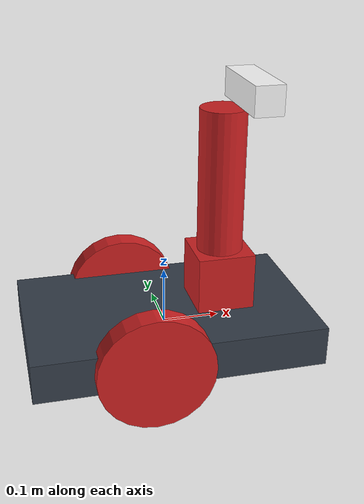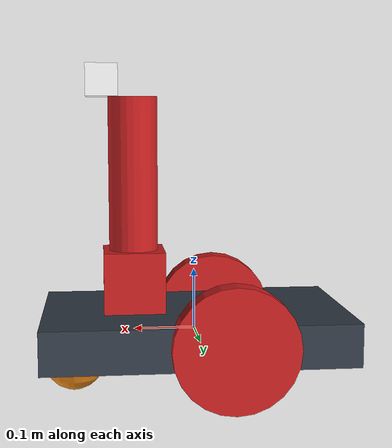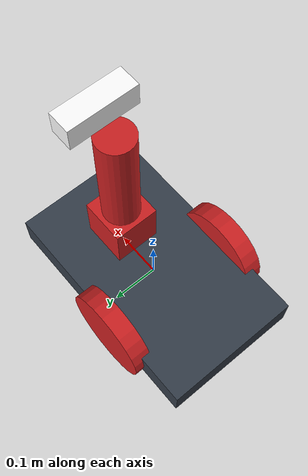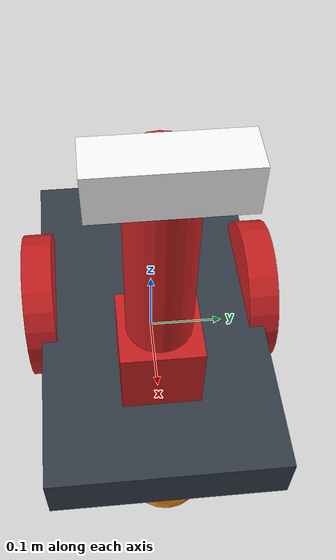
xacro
<?xml version="1.0"?>
<robot xmlns:xacro="http://www.ros.org/wiki/xacro" name="robot_xacro">
<xacro:include filename="$(find exp_assignment2)/urdf/my_robot2.gazebo"/>

	<xacro:property name="length_wheel" value="0.04" />
	<xacro:property name="radius_wheel" value="0.1" />

	<xacro:macro name="default_inertial" params="mass">
               <inertial>
                       <mass value="${mass}" />
                       <origin rpy="0 1.5707 1.5707" xyz="0 0 0"/>
                       <inertia ixx="0.000526666666667" ixy="0" ixz="0" iyy="0.000526666666667" iyz="0" izz="0.001"/>
               </inertial>
	</xacro:macro>

    <xacro:macro name="wheel_geometry">
		<geometry>
       			<cylinder length="${length_wheel}" radius="${radius_wheel}"/>
     	</geometry>
	</xacro:macro>

	<!--#################  MATERIAL PROPERTIES  ############## -->
  <material name="black">
    <color rgba="0.0 0.0 0.0 1.0"/>
  </material>
  <material name="blue">
    <color rgba="0.203125 0.23828125 0.28515625 1.0"/>
  </material>
  <material name="green">
    <color rgba="0.0 0.8 0.0 1.0"/>
  </material>
  <material name="grey">
    <color rgba="0.2 0.2 0.2 1.0"/>
  </material>
  <material name="orange">
    <color rgba="1.0 0.423529411765 0.0392156862745 1.0"/>
  </material>
  <material name="brown">
    <color rgba="0.870588235294 0.811764705882 0.764705882353 1.0"/>
  </material>
  <material name="red">
    <color rgba="0.80078125 0.12890625 0.1328125 1.0"/>
  </material>
  <material name="white">
    <color rgba="1.0 1.0 1.0 1.0"/>
  </material>

  <!--#################  LINK PROPERTIES  ############## -->
	  <link name="link_chassis">
    <!-- pose and inertial -->
    <pose>0 0 0.1 0 0 0</pose>
    <inertial>
      <mass value="5"/>
      <origin rpy="0 0 0" xyz="0 0 0.1"/>
      <inertia ixx="0.0395416666667" ixy="0" ixz="0" iyy="0.106208333333" iyz="0" izz="0.106208333333"/>
    </inertial>
    <!-- body -->
    <collision name="collision_chassis">
      <geometry>
        <box size="0.5 0.3 0.07"/>
      </geometry>
    </collision>
    <visual>
      <origin rpy="0 0 0" xyz="0 0 0"/>
      <geometry>
        <box size="0.5 0.3 0.07"/>
      </geometry>
      <material name="blue"/>
    </visual>
    <!-- caster front -->
    <collision name="caster_front_collision">
      <origin rpy=" 0 0 0" xyz="0.35 0 -0.05"/>
      <geometry>
        <sphere radius="0.05"/>
      </geometry>
    </collision>
    <visual name="caster_front_visual">
      <origin rpy=" 0 0 0" xyz="0.2 0 -0.05"/>
      <geometry>
        <sphere radius="0.05"/>
      </geometry>
    </visual>
  </link>

  <link name="link_back_right_wheel">
    <xacro:default_inertial mass="0.2"/>
    <collision name="link_back_right_wheel_collision">
      <origin rpy="0 1.5707 1.5707" xyz="0 0 0"/>
      <xacro:wheel_geometry />
    </collision>
    <visual name="link_back_right_wheel_visual">
      <origin rpy="0 1.5707 1.5707" xyz="0 0 0"/>
      <xacro:wheel_geometry />
      <material name="red"/>
    </visual>
  </link>

   <link name="link_back_left_wheel">
    <xacro:default_inertial mass="0.2"/>
    <collision name="link_back_left_wheel_collision">
      <origin rpy="0 1.5707 1.5707" xyz="0 0 0"/>
      <xacro:wheel_geometry />
    </collision>
    <visual name="link_back_left_wheel_visual">
      <origin rpy="0 1.5707 1.5707" xyz="0 0 0"/>
      <xacro:wheel_geometry />
      <material name="red"/>
    </visual>
  </link>
  <!--###############################################
                Joint definitions
  ####################################################-->
  <joint name="joint_back_right_wheel" type="continuous">
    <origin rpy="0 0 0" xyz="-0.05 0.15 0"/>
    <child link="link_back_right_wheel"/>
    <parent link="link_chassis"/>
    <axis rpy="0 0 0" xyz="0 1 0"/>
    <limit effort="10000" velocity="1000"/>
    <joint_properties damping="1.0" friction="1.0"/>
  </joint>

  <joint name="joint_back_left_wheel" type="continuous">
    <origin rpy="0 0 0" xyz="-0.05 -0.15 0"/>
    <child link="link_back_left_wheel"/>
    <parent link="link_chassis"/>
    <axis rpy="0 0 0" xyz="0 1 0"/>
    <limit effort="10000" velocity="1000"/>
    <joint_properties damping="1.0" friction="1.0"/>
  </joint>
<!--camera links - neck definition -->

  <link name="neck_base_link">
  	<inertial>
  		<mass value="0.001"/>
  		<origin xyz="0 0 0" rpy="0 0 0" />
  		<inertia ixx="0.0000416666667" ixy="0" ixz="0" iyy="0.0000416666667" iyz="0" izz="0.0000416666667"/>
  	</inertial>
  	<collision>
  	  <origin xyz="0 0 0" rpy="0 0 0"/>
      <geometry>
        <box size="0.1 0.1 0.1"/>
      </geometry>
  	</collision>
  	<visual>
  	  <origin xyz="0 0 0" rpy="0 0 0"/>
      <geometry>
        <box size="0.1 0.1 0.1"/>
      </geometry>
      <material name="red" />
  	</visual>
  </link>

  <joint name="neck_base_to_chassis" type="fixed">
  	<origin rpy="0 0 0" xyz="0.10 0 0.085"/>
  	<parent link="link_chassis"/>
  	<child link="neck_base_link"/>
  </joint>

  <link name="neck_link">
  	<inertial>
  		<mass value="0.00125"/>
  		<origin xyz="0 0 0" rpy="0 0 0" />
  		<inertia ixx="0.000010279" ixy="0" ixz="0" iyy="0.000010279" iyz="0" izz="0.000007225"/>
  	</inertial>
  	<collision>
  	  <origin xyz="0 0 0.125" rpy="0 0 0"/>
      <geometry>
        <cylinder radius="0.04" length="0.25"/>
      </geometry>
  	</collision>
  	<visual>
  	  <origin xyz="0 0 0.125" rpy="0 0 0"/>
      <geometry>
        <cylinder radius="0.04" length="0.25"/>
      </geometry>
      <material name="red" />
  	</visual>
  </link>
  <joint name="neck_joint" type="revolute">
  	<axis xyz="0 0 1"/>
  	<limit effort="1000.0" lower="-6.28" upper="6.28" velocity="0.2"/>
  	<origin rpy="0 0 0" xyz="0 0 0.05"/>
  	<parent link="neck_base_link"/>
  	<child link="neck_link"/>
  </joint>

  <link name="camera_link">
  	<inertial>
  		<mass value="0.001"/>
  		<origin xyz="0 0 0" rpy="0 0 0" />
  		<inertia ixx="0.00000416666667" ixy="0" ixz="0" iyy="0.00000416666667" iyz="0" izz="0.00000416666667"/>
  	</inertial>
  	<collision>
  	  <origin xyz="0.05 0 0.025" rpy="0 0 0"/>
      <geometry>
        <box size="0.15 0.15 0.05"/>
      </geometry>
  	</collision>
  	<visual>
  	  <origin xyz="0.05 0 0.025" rpy="0 0 0"/>
      <geometry>
        <box size="0.05 0.15 0.05"/>
      </geometry>
      <material name="white" />
  	</visual>
  </link>

  <joint name="camera_joint" type="fixed">
  	<origin rpy="0 0 0" xyz="0 0 0.25"/>
  	<parent link="neck_link"/>
  	<child link="camera_link"/>
  </joint>

<transmission name="neck_joint_trans">
	<type>transmission_interface/SimpleTransmission</type>
	<joint name="neck_joint">
		<hardwareInterface>hardware_interface/EffortJointInterface</hardwareInterface>
	</joint>
	<actuator name="motor1">
		<hardwareInterface>hardware_interface/EffortJointInterface</hardwareInterface>
		<mechanicalInterface>1</mechanicalInterface>
	</actuator>
</transmission>

</robot>
